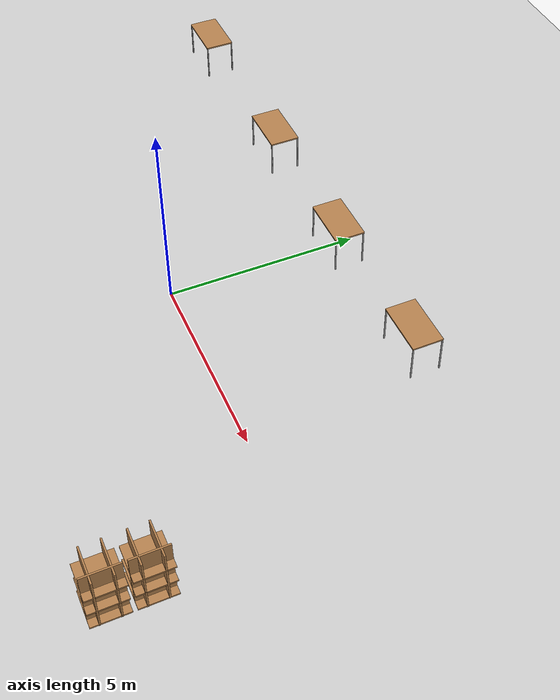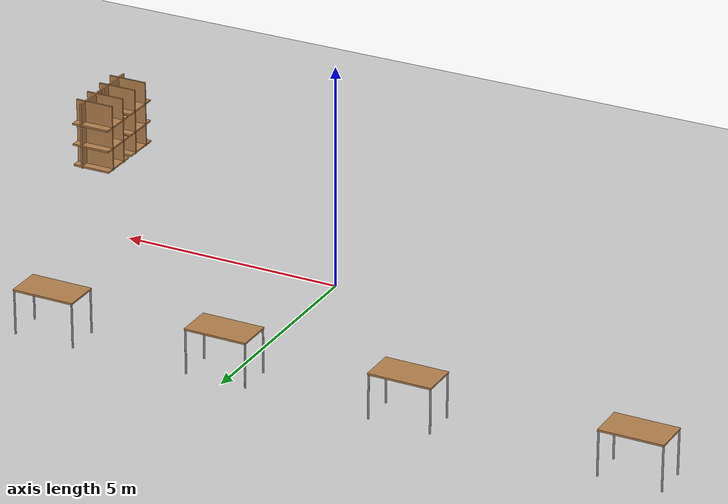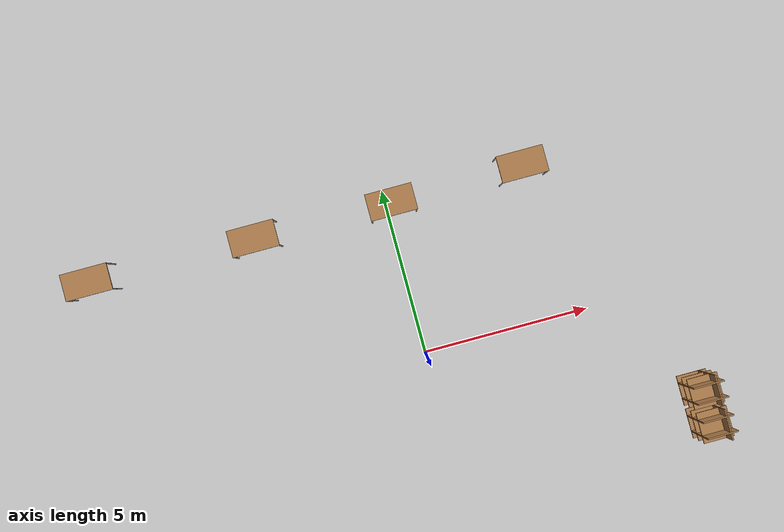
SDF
<sdf version="1.7">
 <world name="default">
  <light name="sun" type="directional">
   <pose>0 0 10 0 -0 0</pose>
   <diffuse>0.8 0.8 0.8 1</diffuse>
   <specular>0.1 0.1 0.1 1</specular>
   <attenuation>
    <range>1000</range>
    <constant>0.9</constant>
    <linear>0.01</linear>
    <quadratic>0.001</quadratic>
   </attenuation>
   <direction>-0.5 0.5 -1</direction>
   <spot><inner_angle>0</inner_angle><outer_angle>0</outer_angle><falloff>0</falloff></spot>
  </light>
  <model name="ground_plane">
   <static>1</static>
   <link name="link">
    <collision name="collision">
     <geometry><plane><normal>0 0 1</normal><size>100 100</size></plane></geometry>
     <surface><friction><ode><mu>100</mu><mu2>50</mu2></ode></friction></surface>
    </collision>
    <visual name="visual">
     <cast_shadows>0</cast_shadows>
     <geometry><plane><normal>0 0 1</normal><size>100 100</size></plane></geometry>
     <material>
      <script><uri>file://media/materials/scripts/gazebo.material</uri><name>Gazebo/Grey</name></script>
     </material>
    </visual>
   </link>
  </model>
  <gravity>0 0 -9.8</gravity>
  <magnetic_field>6e-06 2.3e-05 -4.2e-05</magnetic_field>
  <atmosphere type="adiabatic"/>
  <physics name="default_physics" default="0" type="ode">
   <max_step_size>0.001</max_step_size>
   <real_time_factor>1</real_time_factor>
   <real_time_update_rate>1000</real_time_update_rate>
  </physics>
  <scene><ambient>0.4 0.4 0.4 1</ambient><background>0.7 0.7 0.7 1</background><shadows>1</shadows></scene>
  <spherical_coordinates>
   <surface_model>EARTH_WGS84</surface_model>
   <latitude_deg>0</latitude_deg>
   <longitude_deg>0</longitude_deg>
   <elevation>0</elevation>
   <heading_deg>0</heading_deg>
  </spherical_coordinates>
  <model name="cabinet">
   <static>1</static>
   <link name="cabinet_bottom_plate">
    <inertial>
     <pose>0 0 -1 0 -0 0</pose>
     <inertia><ixx>2.05</ixx><ixy>0</ixy><ixz>0</ixz><iyy>2.05</iyy><iyz>0</iyz><izz>2.05</izz></inertia>
     <mass>25</mass>
    </inertial>
    <collision name="cabinet_bottom_plate_geom">
     <pose>0 0 0.01 0 -0 0</pose>
     <geometry><box><size>0.9 0.9 0.04</size></box></geometry>
    </collision>
    <visual name="cabinet_bottom_plate_geom_visual">
     <pose>0 0 0.01 0 -0 0</pose>
     <geometry><box><size>0.9 0.9 0.04</size></box></geometry>
     <material>
      <script><uri>file://media/materials/scripts/gazebo.material</uri><name>Gazebo/Wood</name></script>
     </material>
    </visual>
    <collision name="cabinet_bottom_plate_geom_cabinet_back_plate">
     <pose>0.235 0 0.51 0 -0 0</pose>
     <geometry><box><size>0.04 0.9 2.04</size></box></geometry>
    </collision>
    <visual name="cabinet_bottom_plate_geom_cabinet_back_plate_visual">
     <pose>0.235 0 0.51 0 -0 0</pose>
     <geometry><box><size>0.04 0.9 2.04</size></box></geometry>
     <material>
      <script><uri>file://media/materials/scripts/gazebo.material</uri><name>Gazebo/Wood</name></script>
     </material>
    </visual>
    <collision name="cabinet_bottom_plate_geom_cabinet_left_plate">
     <pose>0 0.235 0.51 0 -0 0</pose>
     <geometry><box><size>0.9 0.04 2.04</size></box></geometry>
    </collision>
    <visual name="cabinet_bottom_plate_geom_cabinet_left_plate_visual">
     <pose>0 0.235 0.51 0 -0 0</pose>
     <geometry><box><size>0.9 0.04 2.04</size></box></geometry>
     <material>
      <script><uri>file://media/materials/scripts/gazebo.material</uri><name>Gazebo/Wood</name></script>
     </material>
    </visual>
    <collision name="cabinet_bottom_plate_geom_cabinet_middle_plate">
     <pose>0 0 0.51 0 -0 0</pose>
     <geometry><box><size>0.9 0.9 0.04</size></box></geometry>
    </collision>
    <visual name="cabinet_bottom_plate_geom_cabinet_middle_plate_visual">
     <pose>0 0 0.51 0 -0 0</pose>
     <geometry><box><size>0.9 0.9 0.04</size></box></geometry>
     <material>
      <script><uri>file://media/materials/scripts/gazebo.material</uri><name>Gazebo/Wood</name></script>
     </material>
    </visual>
    <collision name="cabinet_bottom_plate_geom_cabinet_right_plate">
     <pose>0 -0.235 0.51 0 -0 0</pose>
     <geometry><box><size>0.9 0.04 2.04</size></box></geometry>
    </collision>
    <visual name="cabinet_bottom_plate_geom_cabinet_right_plate_visual">
     <pose>0 -0.235 0.51 0 -0 0</pose>
     <geometry><box><size>0.9 0.04 2.04</size></box></geometry>
     <material>
      <script><uri>file://media/materials/scripts/gazebo.material</uri><name>Gazebo/Wood</name></script>
     </material>
    </visual>
    <collision name="cabinet_bottom_plate_geom_cabinet_top_plate">
     <pose>0 0 1.01 0 -0 0</pose>
     <geometry><box><size>0.9 0.9 0.04</size></box></geometry>
    </collision>
    <visual name="cabinet_bottom_plate_geom_cabinet_top_plate_visual">
     <pose>0 0 1.01 0 -0 0</pose>
     <geometry><box><size>0.9 0.9 0.04</size></box></geometry>
     <material>
      <script><uri>file://media/materials/scripts/gazebo.material</uri><name>Gazebo/Wood</name></script>
     </material>
    </visual>
   </link>
   <pose>7.5 -3.11117 0 0 -0 0</pose>
  </model>
  <model name="cabinet_0">
   <static>1</static>
   <link name="cabinet_bottom_plate">
    <inertial>
     <pose>0 0 -1 0 -0 0</pose>
     <inertia><ixx>2.05</ixx><ixy>0</ixy><ixz>0</ixz><iyy>2.05</iyy><iyz>0</iyz><izz>2.05</izz></inertia>
     <mass>25</mass>
    </inertial>
    <collision name="cabinet_bottom_plate_geom">
     <pose>0 0 0.01 0 -0 0</pose>
     <geometry><box><size>0.9 0.9 0.04</size></box></geometry>
    </collision>
    <visual name="cabinet_bottom_plate_geom_visual">
     <pose>0 0 0.01 0 -0 0</pose>
     <geometry><box><size>0.9 0.9 0.04</size></box></geometry>
     <material>
      <script><uri>file://media/materials/scripts/gazebo.material</uri><name>Gazebo/Wood</name></script>
     </material>
    </visual>
    <collision name="cabinet_bottom_plate_geom_cabinet_back_plate">
     <pose>0.235 0 0.51 0 -0 0</pose>
     <geometry><box><size>0.04 0.9 2.04</size></box></geometry>
    </collision>
    <visual name="cabinet_bottom_plate_geom_cabinet_back_plate_visual">
     <pose>0.235 0 0.51 0 -0 0</pose>
     <geometry><box><size>0.04 0.9 2.04</size></box></geometry>
     <material>
      <script><uri>file://media/materials/scripts/gazebo.material</uri><name>Gazebo/Wood</name></script>
     </material>
    </visual>
    <collision name="cabinet_bottom_plate_geom_cabinet_left_plate">
     <pose>0 0.235 0.51 0 -0 0</pose>
     <geometry><box><size>0.9 0.04 2.04</size></box></geometry>
    </collision>
    <visual name="cabinet_bottom_plate_geom_cabinet_left_plate_visual">
     <pose>0 0.235 0.51 0 -0 0</pose>
     <geometry><box><size>0.9 0.04 2.04</size></box></geometry>
     <material>
      <script><uri>file://media/materials/scripts/gazebo.material</uri><name>Gazebo/Wood</name></script>
     </material>
    </visual>
    <collision name="cabinet_bottom_plate_geom_cabinet_middle_plate">
     <pose>0 0 0.51 0 -0 0</pose>
     <geometry><box><size>0.9 0.9 0.04</size></box></geometry>
    </collision>
    <visual name="cabinet_bottom_plate_geom_cabinet_middle_plate_visual">
     <pose>0 0 0.51 0 -0 0</pose>
     <geometry><box><size>0.9 0.9 0.04</size></box></geometry>
     <material>
      <script><uri>file://media/materials/scripts/gazebo.material</uri><name>Gazebo/Wood</name></script>
     </material>
    </visual>
    <collision name="cabinet_bottom_plate_geom_cabinet_right_plate">
     <pose>0 -0.235 0.51 0 -0 0</pose>
     <geometry><box><size>0.9 0.04 2.04</size></box></geometry>
    </collision>
    <visual name="cabinet_bottom_plate_geom_cabinet_right_plate_visual">
     <pose>0 -0.235 0.51 0 -0 0</pose>
     <geometry><box><size>0.9 0.04 2.04</size></box></geometry>
     <material>
      <script><uri>file://media/materials/scripts/gazebo.material</uri><name>Gazebo/Wood</name></script>
     </material>
    </visual>
    <collision name="cabinet_bottom_plate_geom_cabinet_top_plate">
     <pose>0 0 1.01 0 -0 0</pose>
     <geometry><box><size>0.9 0.9 0.04</size></box></geometry>
    </collision>
    <visual name="cabinet_bottom_plate_geom_cabinet_top_plate_visual">
     <pose>0 0 1.01 0 -0 0</pose>
     <geometry><box><size>0.9 0.9 0.04</size></box></geometry>
     <material>
      <script><uri>file://media/materials/scripts/gazebo.material</uri><name>Gazebo/Wood</name></script>
     </material>
    </visual>
   </link>
   <pose>7.5 -4.1149 0 0 -0 0</pose>
  </model>
  <model name="table">
   <static>1</static>
   <link name="link">
    <collision name="surface">
     <pose>0 0 1 0 -0 0</pose>
     <geometry><box><size>1.5 0.8 0.03</size></box></geometry>
     <surface><friction><ode><mu>0.6</mu><mu2>0.6</mu2></ode></friction></surface>
    </collision>
    <visual name="visual1">
     <pose>0 0 1 0 -0 0</pose>
     <geometry><box><size>1.4 0.8 0.04</size></box></geometry>
     <material>
      <script><uri>file://media/materials/scripts/gazebo.material</uri><name>Gazebo/Wood</name></script>
     </material>
    </visual>
    <collision name="front_left_leg">
     <pose>0.68 0.38 0.5 0 -0 0</pose>
     <geometry><cylinder><radius>0.02</radius><length>1</length></cylinder></geometry>
    </collision>
    <visual name="front_left_leg">
     <pose>0.68 0.38 0.5 0 -0 0</pose>
     <geometry><cylinder><radius>0.02</radius><length>1</length></cylinder></geometry>
     <material>
      <script><uri>file://media/materials/scripts/gazebo.material</uri><name>Gazebo/Grey</name></script>
     </material>
    </visual>
    <collision name="front_right_leg">
     <pose>0.68 -0.38 0.5 0 -0 0</pose>
     <geometry><cylinder><radius>0.02</radius><length>1</length></cylinder></geometry>
    </collision>
    <visual name="front_right_leg">
     <pose>0.68 -0.38 0.5 0 -0 0</pose>
     <geometry><cylinder><radius>0.02</radius><length>1</length></cylinder></geometry>
     <material>
      <script><uri>file://media/materials/scripts/gazebo.material</uri><name>Gazebo/Grey</name></script>
     </material>
    </visual>
    <collision name="back_right_leg">
     <pose>-0.68 -0.38 0.5 0 -0 0</pose>
     <geometry><cylinder><radius>0.02</radius><length>1</length></cylinder></geometry>
    </collision>
    <visual name="back_right_leg">
     <pose>-0.68 -0.38 0.5 0 -0 0</pose>
     <geometry><cylinder><radius>0.02</radius><length>1</length></cylinder></geometry>
     <material>
      <script><uri>file://media/materials/scripts/gazebo.material</uri><name>Gazebo/Grey</name></script>
     </material>
    </visual>
    <collision name="back_left_leg">
     <pose>-0.68 0.38 0.5 0 -0 0</pose>
     <geometry><cylinder><radius>0.02</radius><length>1</length></cylinder></geometry>
    </collision>
    <visual name="back_left_leg">
     <pose>-0.68 0.38 0.5 0 -0 0</pose>
     <geometry><cylinder><radius>0.02</radius><length>1</length></cylinder></geometry>
     <material>
      <script><uri>file://media/materials/scripts/gazebo.material</uri><name>Gazebo/Grey</name></script>
     </material>
    </visual>
    <inertial>
     <inertia><ixx>1</ixx><ixy>0</ixy><ixz>0</ixz><iyy>1</iyy><iyz>0</iyz><izz>1</izz></inertia>
     <mass>1</mass>
    </inertial>
   </link>
   <pose>-3.97023 4.55386 -2e-06 0 -0 0</pose>
  </model>
  <model name="table_0">
   <static>1</static>
   <link name="link">
    <collision name="surface">
     <pose>0 0 1 0 -0 0</pose>
     <geometry><box><size>1.5 0.8 0.03</size></box></geometry>
     <surface><friction><ode><mu>0.6</mu><mu2>0.6</mu2></ode></friction></surface>
    </collision>
    <visual name="visual1">
     <pose>0 0 1 0 -0 0</pose>
     <geometry><box><size>1.4 0.8 0.04</size></box></geometry>
     <material>
      <script><uri>file://media/materials/scripts/gazebo.material</uri><name>Gazebo/Wood</name></script>
     </material>
    </visual>
    <collision name="front_left_leg">
     <pose>0.68 0.38 0.5 0 -0 0</pose>
     <geometry><cylinder><radius>0.02</radius><length>1</length></cylinder></geometry>
    </collision>
    <visual name="front_left_leg">
     <pose>0.68 0.38 0.5 0 -0 0</pose>
     <geometry><cylinder><radius>0.02</radius><length>1</length></cylinder></geometry>
     <material>
      <script><uri>file://media/materials/scripts/gazebo.material</uri><name>Gazebo/Grey</name></script>
     </material>
    </visual>
    <collision name="front_right_leg">
     <pose>0.68 -0.38 0.5 0 -0 0</pose>
     <geometry><cylinder><radius>0.02</radius><length>1</length></cylinder></geometry>
    </collision>
    <visual name="front_right_leg">
     <pose>0.68 -0.38 0.5 0 -0 0</pose>
     <geometry><cylinder><radius>0.02</radius><length>1</length></cylinder></geometry>
     <material>
      <script><uri>file://media/materials/scripts/gazebo.material</uri><name>Gazebo/Grey</name></script>
     </material>
    </visual>
    <collision name="back_right_leg">
     <pose>-0.68 -0.38 0.5 0 -0 0</pose>
     <geometry><cylinder><radius>0.02</radius><length>1</length></cylinder></geometry>
    </collision>
    <visual name="back_right_leg">
     <pose>-0.68 -0.38 0.5 0 -0 0</pose>
     <geometry><cylinder><radius>0.02</radius><length>1</length></cylinder></geometry>
     <material>
      <script><uri>file://media/materials/scripts/gazebo.material</uri><name>Gazebo/Grey</name></script>
     </material>
    </visual>
    <collision name="back_left_leg">
     <pose>-0.68 0.38 0.5 0 -0 0</pose>
     <geometry><cylinder><radius>0.02</radius><length>1</length></cylinder></geometry>
    </collision>
    <visual name="back_left_leg">
     <pose>-0.68 0.38 0.5 0 -0 0</pose>
     <geometry><cylinder><radius>0.02</radius><length>1</length></cylinder></geometry>
     <material>
      <script><uri>file://media/materials/scripts/gazebo.material</uri><name>Gazebo/Grey</name></script>
     </material>
    </visual>
    <inertial>
     <inertia><ixx>1</ixx><ixy>0</ixy><ixz>0</ixz><iyy>1</iyy><iyz>0</iyz><izz>1</izz></inertia>
     <mass>1</mass>
    </inertial>
   </link>
   <pose>0.174964 4.52812 -2e-06 0 -0 0</pose>
  </model>
  <model name="table_0_clone">
   <static>1</static>
   <link name="link">
    <collision name="surface">
     <pose>0 0 1 0 -0 0</pose>
     <geometry><box><size>1.5 0.8 0.03</size></box></geometry>
     <surface><friction><ode><mu>0.6</mu><mu2>0.6</mu2></ode></friction></surface>
    </collision>
    <visual name="visual1">
     <pose>0 0 1 0 -0 0</pose>
     <geometry><box><size>1.4 0.8 0.04</size></box></geometry>
     <material>
      <script><uri>file://media/materials/scripts/gazebo.material</uri><name>Gazebo/Wood</name></script>
     </material>
    </visual>
    <collision name="front_left_leg">
     <pose>0.68 0.38 0.5 0 -0 0</pose>
     <geometry><cylinder><radius>0.02</radius><length>1</length></cylinder></geometry>
    </collision>
    <visual name="front_left_leg">
     <pose>0.68 0.38 0.5 0 -0 0</pose>
     <geometry><cylinder><radius>0.02</radius><length>1</length></cylinder></geometry>
     <material>
      <script><uri>file://media/materials/scripts/gazebo.material</uri><name>Gazebo/Grey</name></script>
     </material>
    </visual>
    <collision name="front_right_leg">
     <pose>0.68 -0.38 0.5 0 -0 0</pose>
     <geometry><cylinder><radius>0.02</radius><length>1</length></cylinder></geometry>
    </collision>
    <visual name="front_right_leg">
     <pose>0.68 -0.38 0.5 0 -0 0</pose>
     <geometry><cylinder><radius>0.02</radius><length>1</length></cylinder></geometry>
     <material>
      <script><uri>file://media/materials/scripts/gazebo.material</uri><name>Gazebo/Grey</name></script>
     </material>
    </visual>
    <collision name="back_right_leg">
     <pose>-0.68 -0.38 0.5 0 -0 0</pose>
     <geometry><cylinder><radius>0.02</radius><length>1</length></cylinder></geometry>
    </collision>
    <visual name="back_right_leg">
     <pose>-0.68 -0.38 0.5 0 -0 0</pose>
     <geometry><cylinder><radius>0.02</radius><length>1</length></cylinder></geometry>
     <material>
      <script><uri>file://media/materials/scripts/gazebo.material</uri><name>Gazebo/Grey</name></script>
     </material>
    </visual>
    <collision name="back_left_leg">
     <pose>-0.68 0.38 0.5 0 -0 0</pose>
     <geometry><cylinder><radius>0.02</radius><length>1</length></cylinder></geometry>
    </collision>
    <visual name="back_left_leg">
     <pose>-0.68 0.38 0.5 0 -0 0</pose>
     <geometry><cylinder><radius>0.02</radius><length>1</length></cylinder></geometry>
     <material>
      <script><uri>file://media/materials/scripts/gazebo.material</uri><name>Gazebo/Grey</name></script>
     </material>
    </visual>
    <inertial>
     <inertia><ixx>1</ixx><ixy>0</ixy><ixz>0</ixz><iyy>1</iyy><iyz>0</iyz><izz>1</izz></inertia>
     <mass>1</mass>
    </inertial>
   </link>
   <pose>4.1428 4.60067 -2e-06 0 -0 0</pose>
  </model>
  <model name="table_0_clone_1">
   <static>1</static>
   <link name="link">
    <collision name="surface">
     <pose>0 0 1 0 -0 0</pose>
     <geometry><box><size>1.5 0.8 0.03</size></box></geometry>
     <surface><friction><ode><mu>0.6</mu><mu2>0.6</mu2></ode></friction></surface>
    </collision>
    <visual name="visual1">
     <pose>0 0 1 0 -0 0</pose>
     <geometry><box><size>1.4 0.8 0.04</size></box></geometry>
     <material>
      <script><uri>file://media/materials/scripts/gazebo.material</uri><name>Gazebo/Wood</name></script>
     </material>
    </visual>
    <collision name="front_left_leg">
     <pose>0.68 0.38 0.5 0 -0 0</pose>
     <geometry><cylinder><radius>0.02</radius><length>1</length></cylinder></geometry>
    </collision>
    <visual name="front_left_leg">
     <pose>0.68 0.38 0.5 0 -0 0</pose>
     <geometry><cylinder><radius>0.02</radius><length>1</length></cylinder></geometry>
     <material>
      <script><uri>file://media/materials/scripts/gazebo.material</uri><name>Gazebo/Grey</name></script>
     </material>
    </visual>
    <collision name="front_right_leg">
     <pose>0.68 -0.38 0.5 0 -0 0</pose>
     <geometry><cylinder><radius>0.02</radius><length>1</length></cylinder></geometry>
    </collision>
    <visual name="front_right_leg">
     <pose>0.68 -0.38 0.5 0 -0 0</pose>
     <geometry><cylinder><radius>0.02</radius><length>1</length></cylinder></geometry>
     <material>
      <script><uri>file://media/materials/scripts/gazebo.material</uri><name>Gazebo/Grey</name></script>
     </material>
    </visual>
    <collision name="back_right_leg">
     <pose>-0.68 -0.38 0.5 0 -0 0</pose>
     <geometry><cylinder><radius>0.02</radius><length>1</length></cylinder></geometry>
    </collision>
    <visual name="back_right_leg">
     <pose>-0.68 -0.38 0.5 0 -0 0</pose>
     <geometry><cylinder><radius>0.02</radius><length>1</length></cylinder></geometry>
     <material>
      <script><uri>file://media/materials/scripts/gazebo.material</uri><name>Gazebo/Grey</name></script>
     </material>
    </visual>
    <collision name="back_left_leg">
     <pose>-0.68 0.38 0.5 0 -0 0</pose>
     <geometry><cylinder><radius>0.02</radius><length>1</length></cylinder></geometry>
    </collision>
    <visual name="back_left_leg">
     <pose>-0.68 0.38 0.5 0 -0 0</pose>
     <geometry><cylinder><radius>0.02</radius><length>1</length></cylinder></geometry>
     <material>
      <script><uri>file://media/materials/scripts/gazebo.material</uri><name>Gazebo/Grey</name></script>
     </material>
    </visual>
    <inertial>
     <inertia><ixx>1</ixx><ixy>0</ixy><ixz>0</ixz><iyy>1</iyy><iyz>0</iyz><izz>1</izz></inertia>
     <mass>1</mass>
    </inertial>
   </link>
   <pose>-8.95138 4.59177 -2e-06 0 -0 0</pose>
  </model>
  <model name="FANUC_LR_mate_200iD">
   <link name="link_0">
    <inertial>
     <mass>1</mass>
     <inertia>
      <ixx>0.166667</ixx>
      <ixy>0</ixy>
      <ixz>0</ixz>
      <iyy>0.166667</iyy>
      <iyz>0</iyz>
      <izz>0.166667</izz>
     </inertia>
    </inertial>
    <visual name="visual">
     <geometry>
      <mesh>
       <uri>model://FANUC_LR_mate_200iD/meshes/FanucLRMate200iD.stl</uri>
       <scale>0.001 0.001 0.001</scale>
      </mesh>
     </geometry>
     <material>
      <lighting>1</lighting>
      <script><uri>file://media/materials/scripts/gazebo.material</uri><name>Gazebo/Grey</name></script>
      <ambient>0.3 0.3 0.3 1</ambient>
      <diffuse>0.7 0.7 0.7 1</diffuse>
      <specular>0.01 0.01 0.01 1</specular>
      <emissive>0 0 0 1</emissive>
     </material>
    </visual>
    <collision name="collision">
     <geometry>
      <mesh>
       <uri>model://FANUC_LR_mate_200iD/meshes/FanucLRMate200iD.stl</uri>
       <scale>0.001 0.001 0.001</scale>
      </mesh>
     </geometry>
     <surface>
      <friction>
       <ode><mu>1</mu><mu2>1</mu2><fdir1>0 0 0</fdir1><slip1>0</slip1><slip2>0</slip2></ode>
       <torsional>
        <coefficient>1</coefficient>
        <patch_radius>0</patch_radius>
        <surface_radius>0</surface_radius>
        <use_patch_radius>1</use_patch_radius>
        <ode><slip>0</slip></ode>
       </torsional>
      </friction>
      <bounce><restitution_coefficient>0</restitution_coefficient><threshold>1e+06</threshold></bounce>
      <contact>
       <collide_without_contact>0</collide_without_contact>
       <collide_without_contact_bitmask>1</collide_without_contact_bitmask>
       <collide_bitmask>1</collide_bitmask>
       <ode>
        <soft_cfm>0</soft_cfm>
        <soft_erp>0.2</soft_erp>
        <kp>1e+13</kp>
        <kd>1</kd>
        <max_vel>0.01</max_vel>
        <min_depth>0</min_depth>
       </ode>
       <bullet>
        <split_impulse>1</split_impulse>
        <split_impulse_penetration_threshold>-0.01</split_impulse_penetration_threshold>
        <soft_cfm>0</soft_cfm>
        <soft_erp>0.2</soft_erp>
        <kp>1e+13</kp>
        <kd>1</kd>
       </bullet>
      </contact>
     </surface>
    </collision>
   </link>
   <static>1</static>
   <pose>-3.9 8.79006 0.884475 1.57077 0.001543 -1.58853</pose>
  </model>
  <model name="FANUC_LR_mate_200iD_clone">
   <link name="link_0">
    <inertial>
     <mass>1</mass>
     <inertia>
      <ixx>0.166667</ixx>
      <ixy>0</ixy>
      <ixz>0</ixz>
      <iyy>0.166667</iyy>
      <iyz>0</iyz>
      <izz>0.166667</izz>
     </inertia>
    </inertial>
    <visual name="visual">
     <geometry>
      <mesh>
       <uri>model://FANUC_LR_mate_200iD/meshes/FanucLRMate200iD.stl</uri>
       <scale>0.001 0.001 0.001</scale>
      </mesh>
     </geometry>
     <material>
      <lighting>1</lighting>
      <script><uri>file://media/materials/scripts/gazebo.material</uri><name>Gazebo/Grey</name></script>
      <ambient>0.3 0.3 0.3 1</ambient>
      <diffuse>0.7 0.7 0.7 1</diffuse>
      <specular>0.01 0.01 0.01 1</specular>
      <emissive>0 0 0 1</emissive>
     </material>
    </visual>
    <collision name="collision">
     <geometry>
      <mesh>
       <uri>model://FANUC_LR_mate_200iD/meshes/FanucLRMate200iD.stl</uri>
       <scale>0.001 0.001 0.001</scale>
      </mesh>
     </geometry>
     <surface>
      <friction>
       <ode><mu>1</mu><mu2>1</mu2><fdir1>0 0 0</fdir1><slip1>0</slip1><slip2>0</slip2></ode>
       <torsional>
        <coefficient>1</coefficient>
        <patch_radius>0</patch_radius>
        <surface_radius>0</surface_radius>
        <use_patch_radius>1</use_patch_radius>
        <ode><slip>0</slip></ode>
       </torsional>
      </friction>
      <bounce><restitution_coefficient>0</restitution_coefficient><threshold>1e+06</threshold></bounce>
      <contact>
       <collide_without_contact>0</collide_without_contact>
       <collide_without_contact_bitmask>1</collide_without_contact_bitmask>
       <collide_bitmask>1</collide_bitmask>
       <ode>
        <soft_cfm>0</soft_cfm>
        <soft_erp>0.2</soft_erp>
        <kp>1e+13</kp>
        <kd>1</kd>
        <max_vel>0.01</max_vel>
        <min_depth>0</min_depth>
       </ode>
       <bullet>
        <split_impulse>1</split_impulse>
        <split_impulse_penetration_threshold>-0.01</split_impulse_penetration_threshold>
        <soft_cfm>0</soft_cfm>
        <soft_erp>0.2</soft_erp>
        <kp>1e+13</kp>
        <kd>1</kd>
       </bullet>
      </contact>
     </surface>
    </collision>
   </link>
   <static>1</static>
   <pose>-2.7 8.7 0.884475 1.57077 0.001543 -1.58853</pose>
  </model>
  <model name="FANUC_LR_mate_200iD_clone_clone">
   <link name="link_0">
    <inertial>
     <mass>1</mass>
     <inertia>
      <ixx>0.166667</ixx>
      <ixy>0</ixy>
      <ixz>0</ixz>
      <iyy>0.166667</iyy>
      <iyz>0</iyz>
      <izz>0.166667</izz>
     </inertia>
    </inertial>
    <visual name="visual">
     <geometry>
      <mesh>
       <uri>model://FANUC_LR_mate_200iD/meshes/FanucLRMate200iD.stl</uri>
       <scale>0.001 0.001 0.001</scale>
      </mesh>
     </geometry>
     <material>
      <lighting>1</lighting>
      <script><uri>file://media/materials/scripts/gazebo.material</uri><name>Gazebo/Grey</name></script>
      <ambient>0.3 0.3 0.3 1</ambient>
      <diffuse>0.7 0.7 0.7 1</diffuse>
      <specular>0.01 0.01 0.01 1</specular>
      <emissive>0 0 0 1</emissive>
     </material>
    </visual>
    <collision name="collision">
     <geometry>
      <mesh>
       <uri>model://FANUC_LR_mate_200iD/meshes/FanucLRMate200iD.stl</uri>
       <scale>0.001 0.001 0.001</scale>
      </mesh>
     </geometry>
     <surface>
      <friction>
       <ode><mu>1</mu><mu2>1</mu2><fdir1>0 0 0</fdir1><slip1>0</slip1><slip2>0</slip2></ode>
       <torsional>
        <coefficient>1</coefficient>
        <patch_radius>0</patch_radius>
        <surface_radius>0</surface_radius>
        <use_patch_radius>1</use_patch_radius>
        <ode><slip>0</slip></ode>
       </torsional>
      </friction>
      <bounce><restitution_coefficient>0</restitution_coefficient><threshold>1e+06</threshold></bounce>
      <contact>
       <collide_without_contact>0</collide_without_contact>
       <collide_without_contact_bitmask>1</collide_without_contact_bitmask>
       <collide_bitmask>1</collide_bitmask>
       <ode>
        <soft_cfm>0</soft_cfm>
        <soft_erp>0.2</soft_erp>
        <kp>1e+13</kp>
        <kd>1</kd>
        <max_vel>0.01</max_vel>
        <min_depth>0</min_depth>
       </ode>
       <bullet>
        <split_impulse>1</split_impulse>
        <split_impulse_penetration_threshold>-0.01</split_impulse_penetration_threshold>
        <soft_cfm>0</soft_cfm>
        <soft_erp>0.2</soft_erp>
        <kp>1e+13</kp>
        <kd>1</kd>
       </bullet>
      </contact>
     </surface>
    </collision>
   </link>
   <static>1</static>
   <pose>-1.4 8.7 0.884475 1.57077 0.001543 -1.58853</pose>
  </model>
 </world>
</sdf>
